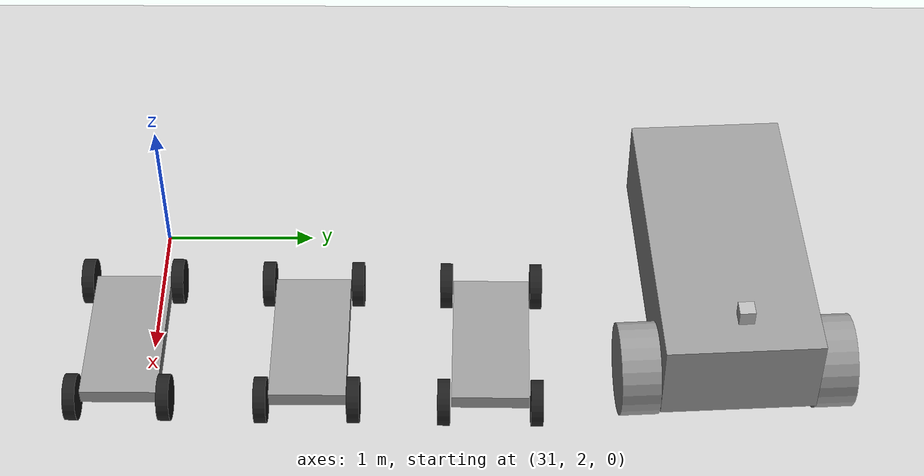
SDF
<sdf version="1.7">
 <world name="default">
  <model name="ground_plane">
   <static>1</static>
   <link name="link">
    <collision name="collision">
     <geometry><plane><normal>0 0 1</normal><size>100 100</size></plane></geometry>
     <surface>
      <contact><collide_bitmask>65535</collide_bitmask></contact>
      <friction><ode><mu>100</mu><mu2>50</mu2></ode></friction>
     </surface>
    </collision>
    <visual name="visual">
     <cast_shadows>0</cast_shadows>
     <geometry><plane><normal>0 0 1</normal><size>100 100</size></plane></geometry>
     <material>
      <script><uri>file://media/materials/scripts/gazebo.material</uri><name>Gazebo/Grey</name></script>
     </material>
    </visual>
   </link>
  </model>
  <model name="follower_vehicle">
   <pose>31.8336 5.76216 0.335006 3e-06 -6e-06 0.057301</pose>
   <link name="chassis">
    <pose>-0.151427 -0 0.175 0 -0 0</pose>
    <inertial>
     <mass>1.14395</mass>
     <inertia>
      <ixx>0.126164</ixx>
      <ixy>0</ixy>
      <ixz>0</ixz>
      <iyy>0.416519</iyy>
      <iyz>0</iyz>
      <izz>0.481014</izz>
     </inertia>
    </inertial>
    <visual name="visual">
     <geometry><box><size>2.01142 1 0.568726</size></box></geometry>
     <material>
      <script><uri>file://media/materials/scripts/gazebo.material</uri><name>Gazebo/Grey</name></script>
     </material>
    </visual>
    <collision name="collision">
     <geometry><box><size>2.01142 1 0.568726</size></box></geometry>
     <surface>
      <friction><ode><mu>1</mu><mu2>1</mu2><fdir1>0 0 0</fdir1><slip1>0</slip1><slip2>0</slip2></ode></friction>
      <bounce><restitution_coefficient>0</restitution_coefficient><threshold>1e+06</threshold></bounce>
      <contact>
       <collide_without_contact>0</collide_without_contact>
       <collide_without_contact_bitmask>1</collide_without_contact_bitmask>
       <collide_bitmask>1</collide_bitmask>
       <ode>
        <soft_cfm>0</soft_cfm>
        <soft_erp>0.2</soft_erp>
        <kp>1e+13</kp>
        <kd>1</kd>
        <max_vel>0.01</max_vel>
        <min_depth>0</min_depth>
       </ode>
      </contact>
     </surface>
    </collision>
   </link>
   <link name="wheel_1">
    <pose>0.554283 0.625029 -0.025 1.5707 -0 0</pose>
    <inertial>
     <mass>2</mass>
     <inertia><ixx>0.145833</ixx><ixy>0</ixy><ixz>0</ixz><iyy>0.145833</iyy><iyz>0</iyz><izz>0.125</izz></inertia>
    </inertial>
    <visual name="visual">
     <geometry><cylinder><radius>0.3</radius><length>0.25</length></cylinder></geometry>
     <material>
      <script><uri>file://media/materials/scripts/gazebo.material</uri><name>Gazebo/Grey</name></script>
     </material>
    </visual>
    <collision name="collision">
     <geometry><cylinder><radius>0.3</radius><length>0.25</length></cylinder></geometry>
     <surface>
      <friction><ode><mu>1</mu><mu2>1</mu2><fdir1>0 0 0</fdir1><slip1>0</slip1><slip2>0</slip2></ode></friction>
      <bounce><restitution_coefficient>0</restitution_coefficient><threshold>1e+06</threshold></bounce>
      <contact>
       <collide_without_contact>0</collide_without_contact>
       <collide_without_contact_bitmask>1</collide_without_contact_bitmask>
       <collide_bitmask>1</collide_bitmask>
       <ode>
        <soft_cfm>0</soft_cfm>
        <soft_erp>0.2</soft_erp>
        <kp>1e+13</kp>
        <kd>1</kd>
        <max_vel>0.01</max_vel>
        <min_depth>0</min_depth>
       </ode>
      </contact>
     </surface>
    </collision>
   </link>
   <link name="wheel_2">
    <pose>0.554282 -0.625029 -0.025 1.5707 -0 0</pose>
    <inertial>
     <mass>2</mass>
     <inertia><ixx>0.145833</ixx><ixy>0</ixy><ixz>0</ixz><iyy>0.145833</iyy><iyz>0</iyz><izz>0.125</izz></inertia>
    </inertial>
    <visual name="visual">
     <geometry><cylinder><radius>0.3</radius><length>0.25</length></cylinder></geometry>
     <material>
      <script><uri>file://media/materials/scripts/gazebo.material</uri><name>Gazebo/Grey</name></script>
     </material>
    </visual>
    <collision name="collision">
     <geometry><cylinder><radius>0.3</radius><length>0.25</length></cylinder></geometry>
     <surface>
      <friction><ode><mu>1</mu><mu2>1</mu2><fdir1>0 0 0</fdir1><slip1>0</slip1><slip2>0</slip2></ode></friction>
      <bounce><restitution_coefficient>0</restitution_coefficient><threshold>1e+06</threshold></bounce>
      <contact>
       <collide_without_contact>0</collide_without_contact>
       <collide_without_contact_bitmask>1</collide_without_contact_bitmask>
       <collide_bitmask>1</collide_bitmask>
       <ode>
        <soft_cfm>0</soft_cfm>
        <soft_erp>0.2</soft_erp>
        <kp>1e+13</kp>
        <kd>1</kd>
        <max_vel>0.01</max_vel>
        <min_depth>0</min_depth>
       </ode>
      </contact>
     </surface>
    </collision>
   </link>
   <link name="caster">
    <pose>-0.957138 -0 -0.125 0 -0 0</pose>
    <inertial>
     <mass>1</mass>
     <inertia><ixx>0.1</ixx><ixy>0</ixy><ixz>0</ixz><iyy>0.1</iyy><iyz>0</iyz><izz>0.1</izz></inertia>
    </inertial>
    <visual name="visual">
     <geometry><sphere><radius>0.2</radius></sphere></geometry>
     <material>
      <script><uri>file://media/materials/scripts/gazebo.material</uri><name>Gazebo/Grey</name></script>
     </material>
    </visual>
    <collision name="collision">
     <geometry><sphere><radius>0.2</radius></sphere></geometry>
     <surface>
      <friction><ode><mu>1</mu><mu2>1</mu2><fdir1>0 0 0</fdir1><slip1>0</slip1><slip2>0</slip2></ode></friction>
      <bounce><restitution_coefficient>0</restitution_coefficient><threshold>1e+06</threshold></bounce>
      <contact>
       <collide_without_contact>0</collide_without_contact>
       <collide_without_contact_bitmask>1</collide_without_contact_bitmask>
       <collide_bitmask>1</collide_bitmask>
       <ode>
        <soft_cfm>0</soft_cfm>
        <soft_erp>0.2</soft_erp>
        <kp>1e+13</kp>
        <kd>1</kd>
        <max_vel>0.01</max_vel>
        <min_depth>0</min_depth>
       </ode>
      </contact>
     </surface>
    </collision>
   </link>
   <model name="depth_camera">
    <link name="link">
     <pose>0.05 0.05 0.05 0 -0 0</pose>
     <inertial>
      <mass>0.1</mass>
      <inertia>
       <ixx>0.000166667</ixx>
       <iyy>0.000166667</iyy>
       <izz>0.000166667</izz>
       <ixy>0</ixy>
       <ixz>0</ixz>
       <iyz>0</iyz>
      </inertia>
     </inertial>
     <collision name="collision"><geometry><box><size>0.1 0.1 0.1</size></box></geometry></collision>
     <visual name="visual"><geometry><box><size>0.1 0.1 0.1</size></box></geometry></visual>
     <sensor name="camera" type="depth">
      <camera name="depth">
       <horizontal_fov>1.047</horizontal_fov>
       <image><width>320</width><height>240</height></image>
       <clip><near>0.1</near><far>100</far></clip>
      </camera>
      <always_on>1</always_on>
      <update_rate>30</update_rate>
      <visualize>1</visualize>
     </sensor>
    </link>
    <pose>0.569632 -0.03223 0.502056 0 -0 0</pose>
   </model>
   <joint name="chassis_wheel_1_revolute" type="revolute">
    <parent>chassis</parent>
    <child>wheel_1</child>
    <axis>
     <xyz>0 0 1</xyz>
     <limit>
      <lower>-1.79769e+308</lower>
      <upper>1.79769e+308</upper>
      <effort>-1</effort>
      <velocity>-1</velocity>
     </limit>
     <dynamics>
      <spring_reference>0</spring_reference>
      <spring_stiffness>0</spring_stiffness>
      <damping>0</damping>
      <friction>0</friction>
     </dynamics>
    </axis>
    <physics>
     <ode><limit><cfm>0</cfm><erp>0.2</erp></limit><suspension><cfm>0</cfm><erp>0.2</erp></suspension></ode>
    </physics>
   </joint>
   <joint name="chassis_wheel_2_revolute" type="revolute">
    <parent>chassis</parent>
    <child>wheel_2</child>
    <axis>
     <xyz>0 0 1</xyz>
     <limit>
      <lower>-1.79769e+308</lower>
      <upper>1.79769e+308</upper>
      <effort>-1</effort>
      <velocity>-1</velocity>
     </limit>
     <dynamics>
      <spring_reference>0</spring_reference>
      <spring_stiffness>0</spring_stiffness>
      <damping>0</damping>
      <friction>0</friction>
     </dynamics>
    </axis>
    <physics>
     <ode><limit><cfm>0</cfm><erp>0.2</erp></limit><suspension><cfm>0</cfm><erp>0.2</erp></suspension></ode>
    </physics>
   </joint>
   <joint name="chassis_caster_ball" type="ball">
    <parent>chassis</parent>
    <child>caster</child>
    <physics>
     <ode><limit><cfm>0</cfm><erp>0.2</erp></limit><suspension><cfm>0</cfm><erp>0.2</erp></suspension></ode>
    </physics>
   </joint>
   <joint name="chassis_depth_camera_link_fixed" type="fixed">
    <parent>chassis</parent>
    <child>depth_camera::link</child>
    <physics>
     <ode><limit><cfm>0</cfm><erp>0.2</erp></limit><suspension><cfm>0</cfm><erp>0.2</erp></suspension></ode>
    </physics>
   </joint>
   <static>0</static>
   <plugin name="follower" filename="libFollowerPlugin.so"/>
  </model>
  <model name="cart_soft_suspension">
   <link name="chassis">
    <pose>0 0 0.15 0 -0 0</pose>
    <inertial>
     <pose>0.1 0 0 0 -0 0</pose>
     <mass>10</mass>
     <inertia>
      <ixx>0.216667</ixx>
      <iyy>0.841667</iyy>
      <izz>1.04167</izz>
      <ixy>0</ixy>
      <ixz>0</ixz>
      <iyz>0</iyz>
     </inertia>
    </inertial>
    <collision name="collision"><geometry><box><size>1 0.5 0.1</size></box></geometry></collision>
    <visual name="visual">
     <geometry><box><size>1 0.5 0.1</size></box></geometry>
     <material>
      <script><uri>file://media/materials/scripts/gazebo.material</uri><name>Gazebo/Grey</name></script>
     </material>
    </visual>
   </link>
   <link name="susp_front_right">
    <pose>0.5 -0.298 0.15 0 -0 0</pose>
    <inertial>
     <mass>0.5</mass>
     <inertia>
      <ixx>0.000208333</ixx>
      <iyy>0.000208333</iyy>
      <izz>0.000208333</izz>
      <ixy>0</ixy>
      <ixz>0</ixz>
      <iyz>0</iyz>
     </inertia>
    </inertial>
    <collision name="collision"><geometry><box><size>0.05 0.05 0.05</size></box></geometry></collision>
    <visual name="visual">
     <geometry><box><size>0.05 0.05 0.05</size></box></geometry>
     <material>
      <script><uri>file://media/materials/scripts/gazebo.material</uri><name>Gazebo/Black</name></script>
     </material>
    </visual>
   </link>
   <joint name="susp_front_right_prismatic" type="prismatic">
    <parent>chassis</parent>
    <child>susp_front_right</child>
    <axis>
     <xyz>0 0 -1</xyz>
     <limit><lower>-0.0375</lower><upper>0.0375</upper></limit>
     <dynamics>
      <damping>100</damping>
      <spring_stiffness>2500</spring_stiffness>
      <spring_reference>0.05</spring_reference>
     </dynamics>
    </axis>
    <physics>
     <ode><implicit_spring_damper>1</implicit_spring_damper><limit><cfm>0</cfm><erp>0.2</erp></limit></ode>
    </physics>
   </joint>
   <link name="wheel_front_right">
    <pose>0.5 -0.298 0.15 -1.5708 0 0</pose>
    <inertial>
     <mass>0.5</mass>
     <inertia>
      <ixx>0.00307917</ixx>
      <iyy>0.00307917</iyy>
      <izz>0.005625</izz>
      <ixy>0</ixy>
      <ixz>0</ixz>
      <iyz>0</iyz>
     </inertia>
    </inertial>
    <collision name="collision">
     <geometry><cylinder><radius>0.15</radius><length>0.08</length></cylinder></geometry>
    </collision>
    <visual name="visual">
     <geometry><cylinder><radius>0.15</radius><length>0.08</length></cylinder></geometry>
     <material>
      <script><uri>file://media/materials/scripts/gazebo.material</uri><name>Gazebo/Black</name></script>
     </material>
    </visual>
   </link>
   <joint name="wheel_front_right_spin" type="revolute">
    <parent>susp_front_right</parent>
    <child>wheel_front_right</child>
    <axis>
     <xyz>0 0 1</xyz>
     <limit><lower>-1e+16</lower><upper>1e+16</upper></limit>
     <dynamics><spring_reference>0</spring_reference><spring_stiffness>0</spring_stiffness></dynamics>
    </axis>
   </joint>
   <link name="susp_front_left">
    <pose>0.5 0.298 0.15 0 -0 0</pose>
    <inertial>
     <mass>0.5</mass>
     <inertia>
      <ixx>0.000208333</ixx>
      <iyy>0.000208333</iyy>
      <izz>0.000208333</izz>
      <ixy>0</ixy>
      <ixz>0</ixz>
      <iyz>0</iyz>
     </inertia>
    </inertial>
    <collision name="collision"><geometry><box><size>0.05 0.05 0.05</size></box></geometry></collision>
    <visual name="visual">
     <geometry><box><size>0.05 0.05 0.05</size></box></geometry>
     <material>
      <script><uri>file://media/materials/scripts/gazebo.material</uri><name>Gazebo/Black</name></script>
     </material>
    </visual>
   </link>
   <joint name="susp_front_left_prismatic" type="prismatic">
    <parent>chassis</parent>
    <child>susp_front_left</child>
    <axis>
     <xyz>0 0 -1</xyz>
     <limit><lower>-0.0375</lower><upper>0.0375</upper></limit>
     <dynamics>
      <damping>100</damping>
      <spring_stiffness>2500</spring_stiffness>
      <spring_reference>0.05</spring_reference>
     </dynamics>
    </axis>
    <physics>
     <ode><implicit_spring_damper>1</implicit_spring_damper><limit><cfm>0</cfm><erp>0.2</erp></limit></ode>
    </physics>
   </joint>
   <link name="wheel_front_left">
    <pose>0.5 0.298 0.15 -1.5708 0 0</pose>
    <inertial>
     <mass>0.5</mass>
     <inertia>
      <ixx>0.00307917</ixx>
      <iyy>0.00307917</iyy>
      <izz>0.005625</izz>
      <ixy>0</ixy>
      <ixz>0</ixz>
      <iyz>0</iyz>
     </inertia>
    </inertial>
    <collision name="collision">
     <geometry><cylinder><radius>0.15</radius><length>0.08</length></cylinder></geometry>
    </collision>
    <visual name="visual">
     <geometry><cylinder><radius>0.15</radius><length>0.08</length></cylinder></geometry>
     <material>
      <script><uri>file://media/materials/scripts/gazebo.material</uri><name>Gazebo/Black</name></script>
     </material>
    </visual>
   </link>
   <joint name="wheel_front_left_spin" type="revolute">
    <parent>susp_front_left</parent>
    <child>wheel_front_left</child>
    <axis>
     <xyz>0 0 1</xyz>
     <limit><lower>-1e+16</lower><upper>1e+16</upper></limit>
     <dynamics><spring_reference>0</spring_reference><spring_stiffness>0</spring_stiffness></dynamics>
    </axis>
   </joint>
   <link name="susp_rear_right">
    <pose>-0.5 -0.298 0.15 0 -0 0</pose>
    <inertial>
     <mass>0.5</mass>
     <inertia>
      <ixx>0.000208333</ixx>
      <iyy>0.000208333</iyy>
      <izz>0.000208333</izz>
      <ixy>0</ixy>
      <ixz>0</ixz>
      <iyz>0</iyz>
     </inertia>
    </inertial>
    <collision name="collision"><geometry><box><size>0.05 0.05 0.05</size></box></geometry></collision>
    <visual name="visual">
     <geometry><box><size>0.05 0.05 0.05</size></box></geometry>
     <material>
      <script><uri>file://media/materials/scripts/gazebo.material</uri><name>Gazebo/Black</name></script>
     </material>
    </visual>
   </link>
   <joint name="susp_rear_right_prismatic" type="prismatic">
    <parent>chassis</parent>
    <child>susp_rear_right</child>
    <axis>
     <xyz>0 0 -1</xyz>
     <limit><lower>-0.0375</lower><upper>0.0375</upper></limit>
     <dynamics>
      <damping>100</damping>
      <spring_stiffness>2500</spring_stiffness>
      <spring_reference>0.05</spring_reference>
     </dynamics>
    </axis>
    <physics>
     <ode><implicit_spring_damper>1</implicit_spring_damper><limit><cfm>0</cfm><erp>0.2</erp></limit></ode>
    </physics>
   </joint>
   <link name="wheel_rear_right">
    <pose>-0.5 -0.298 0.15 -1.5708 0 0</pose>
    <inertial>
     <mass>0.5</mass>
     <inertia>
      <ixx>0.00307917</ixx>
      <iyy>0.00307917</iyy>
      <izz>0.005625</izz>
      <ixy>0</ixy>
      <ixz>0</ixz>
      <iyz>0</iyz>
     </inertia>
    </inertial>
    <collision name="collision">
     <geometry><cylinder><radius>0.15</radius><length>0.08</length></cylinder></geometry>
    </collision>
    <visual name="visual">
     <geometry><cylinder><radius>0.15</radius><length>0.08</length></cylinder></geometry>
     <material>
      <script><uri>file://media/materials/scripts/gazebo.material</uri><name>Gazebo/Black</name></script>
     </material>
    </visual>
   </link>
   <joint name="wheel_rear_right_spin" type="revolute">
    <parent>susp_rear_right</parent>
    <child>wheel_rear_right</child>
    <axis>
     <xyz>0 0 1</xyz>
     <limit><lower>-1e+16</lower><upper>1e+16</upper></limit>
     <dynamics><spring_reference>0</spring_reference><spring_stiffness>0</spring_stiffness></dynamics>
    </axis>
   </joint>
   <link name="susp_rear_left">
    <pose>-0.5 0.298 0.15 0 -0 0</pose>
    <inertial>
     <mass>0.5</mass>
     <inertia>
      <ixx>0.000208333</ixx>
      <iyy>0.000208333</iyy>
      <izz>0.000208333</izz>
      <ixy>0</ixy>
      <ixz>0</ixz>
      <iyz>0</iyz>
     </inertia>
    </inertial>
    <collision name="collision"><geometry><box><size>0.05 0.05 0.05</size></box></geometry></collision>
    <visual name="visual">
     <geometry><box><size>0.05 0.05 0.05</size></box></geometry>
     <material>
      <script><uri>file://media/materials/scripts/gazebo.material</uri><name>Gazebo/Black</name></script>
     </material>
    </visual>
   </link>
   <joint name="susp_rear_left_prismatic" type="prismatic">
    <parent>chassis</parent>
    <child>susp_rear_left</child>
    <axis>
     <xyz>0 0 -1</xyz>
     <limit><lower>-0.0375</lower><upper>0.0375</upper></limit>
     <dynamics>
      <damping>100</damping>
      <spring_stiffness>2500</spring_stiffness>
      <spring_reference>0.05</spring_reference>
     </dynamics>
    </axis>
    <physics>
     <ode><implicit_spring_damper>1</implicit_spring_damper><limit><cfm>0</cfm><erp>0.2</erp></limit></ode>
    </physics>
   </joint>
   <link name="wheel_rear_left">
    <pose>-0.5 0.298 0.15 -1.5708 0 0</pose>
    <inertial>
     <mass>0.5</mass>
     <inertia>
      <ixx>0.00307917</ixx>
      <iyy>0.00307917</iyy>
      <izz>0.005625</izz>
      <ixy>0</ixy>
      <ixz>0</ixz>
      <iyz>0</iyz>
     </inertia>
    </inertial>
    <collision name="collision">
     <geometry><cylinder><radius>0.15</radius><length>0.08</length></cylinder></geometry>
    </collision>
    <visual name="visual">
     <geometry><cylinder><radius>0.15</radius><length>0.08</length></cylinder></geometry>
     <material>
      <script><uri>file://media/materials/scripts/gazebo.material</uri><name>Gazebo/Black</name></script>
     </material>
    </visual>
   </link>
   <joint name="wheel_rear_left_spin" type="revolute">
    <parent>susp_rear_left</parent>
    <child>wheel_rear_left</child>
    <axis>
     <xyz>0 0 1</xyz>
     <limit><lower>-1e+16</lower><upper>1e+16</upper></limit>
     <dynamics><spring_reference>0</spring_reference><spring_stiffness>0</spring_stiffness></dynamics>
    </axis>
   </joint>
   <pose>32.1206 4.23595 0.047491 8e-05 8.8e-05 -0.009134</pose>
  </model>
  <model name="cart_rigid_suspension">
   <link name="chassis">
    <pose>0 0 0.15 0 -0 0</pose>
    <inertial>
     <pose>0.1 0 0 0 -0 0</pose>
     <mass>10</mass>
     <inertia>
      <ixx>0.216667</ixx>
      <iyy>0.841667</iyy>
      <izz>1.04167</izz>
      <ixy>0</ixy>
      <ixz>0</ixz>
      <iyz>0</iyz>
     </inertia>
    </inertial>
    <collision name="collision"><geometry><box><size>1 0.5 0.1</size></box></geometry></collision>
    <visual name="visual">
     <geometry><box><size>1 0.5 0.1</size></box></geometry>
     <material>
      <script><uri>file://media/materials/scripts/gazebo.material</uri><name>Gazebo/Grey</name></script>
     </material>
    </visual>
   </link>
   <link name="wheel_front_left">
    <pose>0.5 0.298 0.15 -1.5708 0 0</pose>
    <inertial>
     <mass>0.5</mass>
     <inertia>
      <ixx>0.00307917</ixx>
      <iyy>0.00307917</iyy>
      <izz>0.005625</izz>
      <ixy>0</ixy>
      <ixz>0</ixz>
      <iyz>0</iyz>
     </inertia>
    </inertial>
    <collision name="collision">
     <geometry><cylinder><radius>0.15</radius><length>0.08</length></cylinder></geometry>
    </collision>
    <visual name="visual">
     <geometry><cylinder><radius>0.15</radius><length>0.08</length></cylinder></geometry>
     <material>
      <script><uri>file://media/materials/scripts/gazebo.material</uri><name>Gazebo/Black</name></script>
     </material>
    </visual>
   </link>
   <joint name="wheel_front_left_spin" type="revolute">
    <parent>chassis</parent>
    <child>wheel_front_left</child>
    <axis>
     <xyz>0 0 1</xyz>
     <limit><lower>-1e+16</lower><upper>1e+16</upper></limit>
     <dynamics><spring_reference>0</spring_reference><spring_stiffness>0</spring_stiffness></dynamics>
    </axis>
   </joint>
   <link name="wheel_front_right">
    <pose>0.5 -0.298 0.15 -1.5708 0 0</pose>
    <inertial>
     <mass>0.5</mass>
     <inertia>
      <ixx>0.00307917</ixx>
      <iyy>0.00307917</iyy>
      <izz>0.005625</izz>
      <ixy>0</ixy>
      <ixz>0</ixz>
      <iyz>0</iyz>
     </inertia>
    </inertial>
    <collision name="collision">
     <geometry><cylinder><radius>0.15</radius><length>0.08</length></cylinder></geometry>
    </collision>
    <visual name="visual">
     <geometry><cylinder><radius>0.15</radius><length>0.08</length></cylinder></geometry>
     <material>
      <script><uri>file://media/materials/scripts/gazebo.material</uri><name>Gazebo/Black</name></script>
     </material>
    </visual>
   </link>
   <joint name="wheel_front_right_spin" type="revolute">
    <parent>chassis</parent>
    <child>wheel_front_right</child>
    <axis>
     <xyz>0 0 1</xyz>
     <limit><lower>-1e+16</lower><upper>1e+16</upper></limit>
     <dynamics><spring_reference>0</spring_reference><spring_stiffness>0</spring_stiffness></dynamics>
    </axis>
   </joint>
   <link name="wheel_rear_left">
    <pose>-0.5 0.298 0.15 -1.5708 0 0</pose>
    <inertial>
     <mass>0.5</mass>
     <inertia>
      <ixx>0.00307917</ixx>
      <iyy>0.00307917</iyy>
      <izz>0.005625</izz>
      <ixy>0</ixy>
      <ixz>0</ixz>
      <iyz>0</iyz>
     </inertia>
    </inertial>
    <collision name="collision">
     <geometry><cylinder><radius>0.15</radius><length>0.08</length></cylinder></geometry>
    </collision>
    <visual name="visual">
     <geometry><cylinder><radius>0.15</radius><length>0.08</length></cylinder></geometry>
     <material>
      <script><uri>file://media/materials/scripts/gazebo.material</uri><name>Gazebo/Black</name></script>
     </material>
    </visual>
   </link>
   <joint name="wheel_rear_left_spin" type="revolute">
    <parent>chassis</parent>
    <child>wheel_rear_left</child>
    <axis>
     <xyz>0 0 1</xyz>
     <limit><lower>-1e+16</lower><upper>1e+16</upper></limit>
     <dynamics><spring_reference>0</spring_reference><spring_stiffness>0</spring_stiffness></dynamics>
    </axis>
   </joint>
   <link name="wheel_rear_right">
    <pose>-0.5 -0.298 0.15 -1.5708 0 0</pose>
    <inertial>
     <mass>0.5</mass>
     <inertia>
      <ixx>0.00307917</ixx>
      <iyy>0.00307917</iyy>
      <izz>0.005625</izz>
      <ixy>0</ixy>
      <ixz>0</ixz>
      <iyz>0</iyz>
     </inertia>
    </inertial>
    <collision name="collision">
     <geometry><cylinder><radius>0.15</radius><length>0.08</length></cylinder></geometry>
    </collision>
    <visual name="visual">
     <geometry><cylinder><radius>0.15</radius><length>0.08</length></cylinder></geometry>
     <material>
      <script><uri>file://media/materials/scripts/gazebo.material</uri><name>Gazebo/Black</name></script>
     </material>
    </visual>
   </link>
   <joint name="wheel_rear_right_spin" type="revolute">
    <parent>chassis</parent>
    <child>wheel_rear_right</child>
    <axis>
     <xyz>0 0 1</xyz>
     <limit><lower>-1e+16</lower><upper>1e+16</upper></limit>
     <dynamics><spring_reference>0</spring_reference><spring_stiffness>0</spring_stiffness></dynamics>
    </axis>
   </joint>
   <pose>32.0733 3.05164 0.01 1e-06 -0 0.001566</pose>
  </model>
  <model name="cart_soft_suspension_0">
   <link name="chassis">
    <pose>0 0 0.15 0 -0 0</pose>
    <inertial>
     <pose>0.1 0 0 0 -0 0</pose>
     <mass>10</mass>
     <inertia>
      <ixx>0.216667</ixx>
      <iyy>0.841667</iyy>
      <izz>1.04167</izz>
      <ixy>0</ixy>
      <ixz>0</ixz>
      <iyz>0</iyz>
     </inertia>
    </inertial>
    <collision name="collision"><geometry><box><size>1 0.5 0.1</size></box></geometry></collision>
    <visual name="visual">
     <geometry><box><size>1 0.5 0.1</size></box></geometry>
     <material>
      <script><uri>file://media/materials/scripts/gazebo.material</uri><name>Gazebo/Grey</name></script>
     </material>
    </visual>
   </link>
   <link name="susp_front_right">
    <pose>0.5 -0.298 0.15 0 -0 0</pose>
    <inertial>
     <mass>0.5</mass>
     <inertia>
      <ixx>0.000208333</ixx>
      <iyy>0.000208333</iyy>
      <izz>0.000208333</izz>
      <ixy>0</ixy>
      <ixz>0</ixz>
      <iyz>0</iyz>
     </inertia>
    </inertial>
    <collision name="collision"><geometry><box><size>0.05 0.05 0.05</size></box></geometry></collision>
    <visual name="visual">
     <geometry><box><size>0.05 0.05 0.05</size></box></geometry>
     <material>
      <script><uri>file://media/materials/scripts/gazebo.material</uri><name>Gazebo/Black</name></script>
     </material>
    </visual>
   </link>
   <joint name="susp_front_right_prismatic" type="prismatic">
    <parent>chassis</parent>
    <child>susp_front_right</child>
    <axis>
     <xyz>0 0 -1</xyz>
     <limit><lower>-0.0375</lower><upper>0.0375</upper></limit>
     <dynamics>
      <damping>100</damping>
      <spring_stiffness>2500</spring_stiffness>
      <spring_reference>0.05</spring_reference>
     </dynamics>
    </axis>
    <physics>
     <ode><implicit_spring_damper>1</implicit_spring_damper><limit><cfm>0</cfm><erp>0.2</erp></limit></ode>
    </physics>
   </joint>
   <link name="wheel_front_right">
    <pose>0.5 -0.298 0.15 -1.5708 0 0</pose>
    <inertial>
     <mass>0.5</mass>
     <inertia>
      <ixx>0.00307917</ixx>
      <iyy>0.00307917</iyy>
      <izz>0.005625</izz>
      <ixy>0</ixy>
      <ixz>0</ixz>
      <iyz>0</iyz>
     </inertia>
    </inertial>
    <collision name="collision">
     <geometry><cylinder><radius>0.15</radius><length>0.08</length></cylinder></geometry>
    </collision>
    <visual name="visual">
     <geometry><cylinder><radius>0.15</radius><length>0.08</length></cylinder></geometry>
     <material>
      <script><uri>file://media/materials/scripts/gazebo.material</uri><name>Gazebo/Black</name></script>
     </material>
    </visual>
   </link>
   <joint name="wheel_front_right_spin" type="revolute">
    <parent>susp_front_right</parent>
    <child>wheel_front_right</child>
    <axis>
     <xyz>0 0 1</xyz>
     <limit><lower>-1e+16</lower><upper>1e+16</upper></limit>
     <dynamics><spring_reference>0</spring_reference><spring_stiffness>0</spring_stiffness></dynamics>
    </axis>
   </joint>
   <link name="susp_front_left">
    <pose>0.5 0.298 0.15 0 -0 0</pose>
    <inertial>
     <mass>0.5</mass>
     <inertia>
      <ixx>0.000208333</ixx>
      <iyy>0.000208333</iyy>
      <izz>0.000208333</izz>
      <ixy>0</ixy>
      <ixz>0</ixz>
      <iyz>0</iyz>
     </inertia>
    </inertial>
    <collision name="collision"><geometry><box><size>0.05 0.05 0.05</size></box></geometry></collision>
    <visual name="visual">
     <geometry><box><size>0.05 0.05 0.05</size></box></geometry>
     <material>
      <script><uri>file://media/materials/scripts/gazebo.material</uri><name>Gazebo/Black</name></script>
     </material>
    </visual>
   </link>
   <joint name="susp_front_left_prismatic" type="prismatic">
    <parent>chassis</parent>
    <child>susp_front_left</child>
    <axis>
     <xyz>0 0 -1</xyz>
     <limit><lower>-0.0375</lower><upper>0.0375</upper></limit>
     <dynamics>
      <damping>100</damping>
      <spring_stiffness>2500</spring_stiffness>
      <spring_reference>0.05</spring_reference>
     </dynamics>
    </axis>
    <physics>
     <ode><implicit_spring_damper>1</implicit_spring_damper><limit><cfm>0</cfm><erp>0.2</erp></limit></ode>
    </physics>
   </joint>
   <link name="wheel_front_left">
    <pose>0.5 0.298 0.15 -1.5708 0 0</pose>
    <inertial>
     <mass>0.5</mass>
     <inertia>
      <ixx>0.00307917</ixx>
      <iyy>0.00307917</iyy>
      <izz>0.005625</izz>
      <ixy>0</ixy>
      <ixz>0</ixz>
      <iyz>0</iyz>
     </inertia>
    </inertial>
    <collision name="collision">
     <geometry><cylinder><radius>0.15</radius><length>0.08</length></cylinder></geometry>
    </collision>
    <visual name="visual">
     <geometry><cylinder><radius>0.15</radius><length>0.08</length></cylinder></geometry>
     <material>
      <script><uri>file://media/materials/scripts/gazebo.material</uri><name>Gazebo/Black</name></script>
     </material>
    </visual>
   </link>
   <joint name="wheel_front_left_spin" type="revolute">
    <parent>susp_front_left</parent>
    <child>wheel_front_left</child>
    <axis>
     <xyz>0 0 1</xyz>
     <limit><lower>-1e+16</lower><upper>1e+16</upper></limit>
     <dynamics><spring_reference>0</spring_reference><spring_stiffness>0</spring_stiffness></dynamics>
    </axis>
   </joint>
   <link name="susp_rear_right">
    <pose>-0.5 -0.298 0.15 0 -0 0</pose>
    <inertial>
     <mass>0.5</mass>
     <inertia>
      <ixx>0.000208333</ixx>
      <iyy>0.000208333</iyy>
      <izz>0.000208333</izz>
      <ixy>0</ixy>
      <ixz>0</ixz>
      <iyz>0</iyz>
     </inertia>
    </inertial>
    <collision name="collision"><geometry><box><size>0.05 0.05 0.05</size></box></geometry></collision>
    <visual name="visual">
     <geometry><box><size>0.05 0.05 0.05</size></box></geometry>
     <material>
      <script><uri>file://media/materials/scripts/gazebo.material</uri><name>Gazebo/Black</name></script>
     </material>
    </visual>
   </link>
   <joint name="susp_rear_right_prismatic" type="prismatic">
    <parent>chassis</parent>
    <child>susp_rear_right</child>
    <axis>
     <xyz>0 0 -1</xyz>
     <limit><lower>-0.0375</lower><upper>0.0375</upper></limit>
     <dynamics>
      <damping>100</damping>
      <spring_stiffness>2500</spring_stiffness>
      <spring_reference>0.05</spring_reference>
     </dynamics>
    </axis>
    <physics>
     <ode><implicit_spring_damper>1</implicit_spring_damper><limit><cfm>0</cfm><erp>0.2</erp></limit></ode>
    </physics>
   </joint>
   <link name="wheel_rear_right">
    <pose>-0.5 -0.298 0.15 -1.5708 0 0</pose>
    <inertial>
     <mass>0.5</mass>
     <inertia>
      <ixx>0.00307917</ixx>
      <iyy>0.00307917</iyy>
      <izz>0.005625</izz>
      <ixy>0</ixy>
      <ixz>0</ixz>
      <iyz>0</iyz>
     </inertia>
    </inertial>
    <collision name="collision">
     <geometry><cylinder><radius>0.15</radius><length>0.08</length></cylinder></geometry>
    </collision>
    <visual name="visual">
     <geometry><cylinder><radius>0.15</radius><length>0.08</length></cylinder></geometry>
     <material>
      <script><uri>file://media/materials/scripts/gazebo.material</uri><name>Gazebo/Black</name></script>
     </material>
    </visual>
   </link>
   <joint name="wheel_rear_right_spin" type="revolute">
    <parent>susp_rear_right</parent>
    <child>wheel_rear_right</child>
    <axis>
     <xyz>0 0 1</xyz>
     <limit><lower>-1e+16</lower><upper>1e+16</upper></limit>
     <dynamics><spring_reference>0</spring_reference><spring_stiffness>0</spring_stiffness></dynamics>
    </axis>
   </joint>
   <link name="susp_rear_left">
    <pose>-0.5 0.298 0.15 0 -0 0</pose>
    <inertial>
     <mass>0.5</mass>
     <inertia>
      <ixx>0.000208333</ixx>
      <iyy>0.000208333</iyy>
      <izz>0.000208333</izz>
      <ixy>0</ixy>
      <ixz>0</ixz>
      <iyz>0</iyz>
     </inertia>
    </inertial>
    <collision name="collision"><geometry><box><size>0.05 0.05 0.05</size></box></geometry></collision>
    <visual name="visual">
     <geometry><box><size>0.05 0.05 0.05</size></box></geometry>
     <material>
      <script><uri>file://media/materials/scripts/gazebo.material</uri><name>Gazebo/Black</name></script>
     </material>
    </visual>
   </link>
   <joint name="susp_rear_left_prismatic" type="prismatic">
    <parent>chassis</parent>
    <child>susp_rear_left</child>
    <axis>
     <xyz>0 0 -1</xyz>
     <limit><lower>-0.0375</lower><upper>0.0375</upper></limit>
     <dynamics>
      <damping>100</damping>
      <spring_stiffness>2500</spring_stiffness>
      <spring_reference>0.05</spring_reference>
     </dynamics>
    </axis>
    <physics>
     <ode><implicit_spring_damper>1</implicit_spring_damper><limit><cfm>0</cfm><erp>0.2</erp></limit></ode>
    </physics>
   </joint>
   <link name="wheel_rear_left">
    <pose>-0.5 0.298 0.15 -1.5708 0 0</pose>
    <inertial>
     <mass>0.5</mass>
     <inertia>
      <ixx>0.00307917</ixx>
      <iyy>0.00307917</iyy>
      <izz>0.005625</izz>
      <ixy>0</ixy>
      <ixz>0</ixz>
      <iyz>0</iyz>
     </inertia>
    </inertial>
    <collision name="collision">
     <geometry><cylinder><radius>0.15</radius><length>0.08</length></cylinder></geometry>
    </collision>
    <visual name="visual">
     <geometry><cylinder><radius>0.15</radius><length>0.08</length></cylinder></geometry>
     <material>
      <script><uri>file://media/materials/scripts/gazebo.material</uri><name>Gazebo/Black</name></script>
     </material>
    </visual>
   </link>
   <joint name="wheel_rear_left_spin" type="revolute">
    <parent>susp_rear_left</parent>
    <child>wheel_rear_left</child>
    <axis>
     <xyz>0 0 1</xyz>
     <limit><lower>-1e+16</lower><upper>1e+16</upper></limit>
     <dynamics><spring_reference>0</spring_reference><spring_stiffness>0</spring_stiffness></dynamics>
    </axis>
   </joint>
   <pose>32.0851 1.84547 0.047455 -8e-06 -0.000112 -0.002987</pose>
  </model>
 </world>
</sdf>
